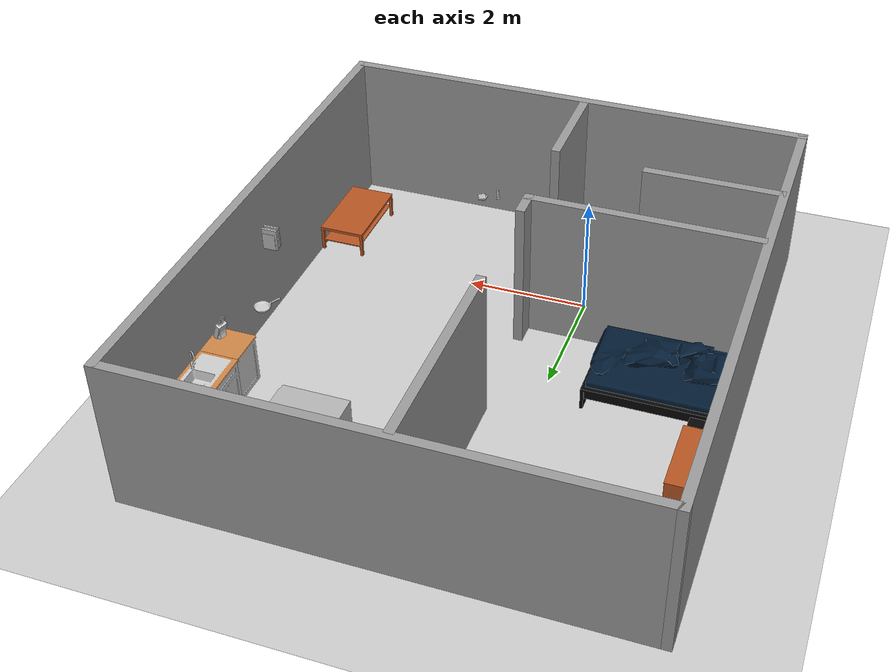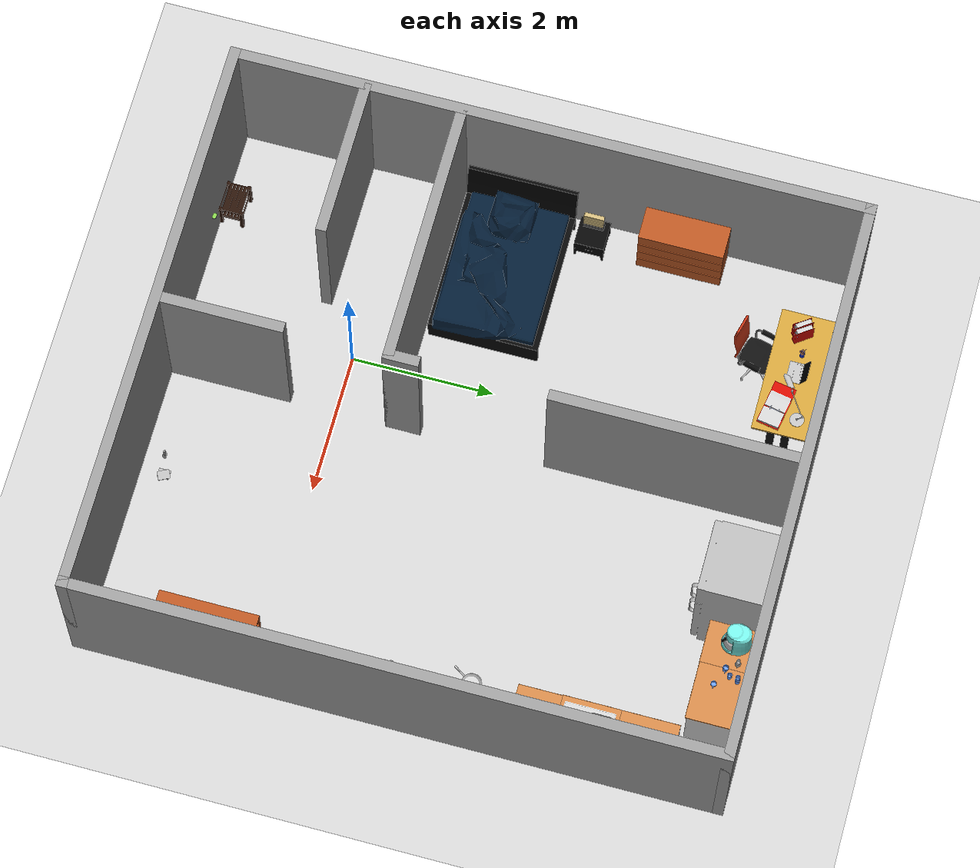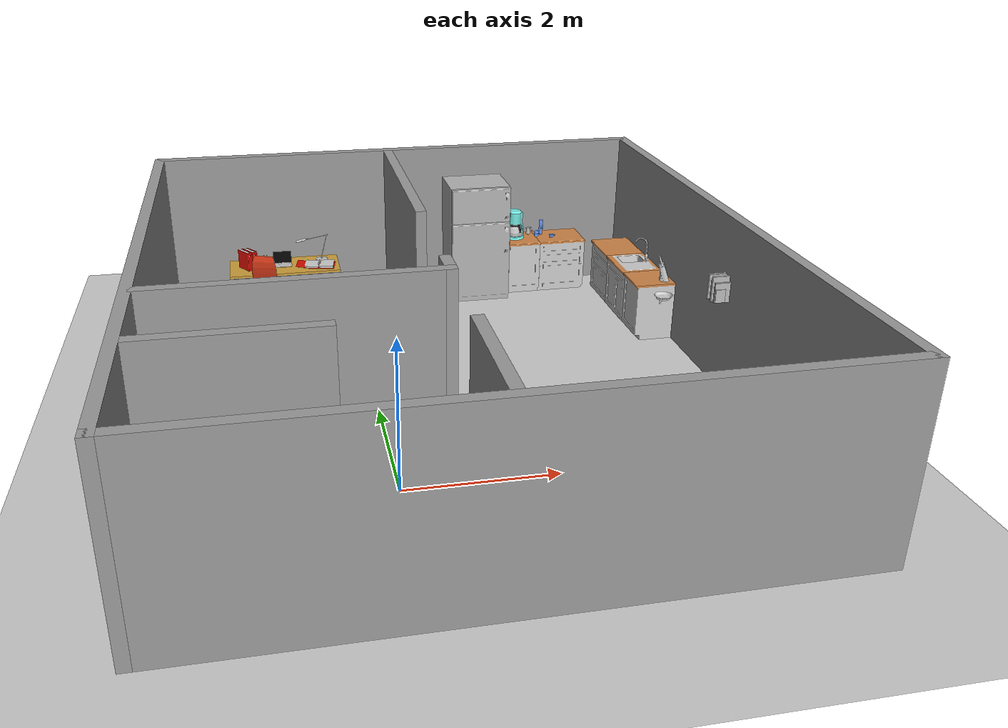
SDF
<sdf version="1.4">
 <world name="default">
  <light name="sun" type="directional">
   <pose>0 0 10 0 -0 0</pose>
   <diffuse>0.8 0.8 0.8 1</diffuse>
   <specular>0.2 0.2 0.2 1</specular>
   <attenuation>
    <range>1000</range>
    <constant>0.9</constant>
    <linear>0.01</linear>
    <quadratic>0.001</quadratic>
   </attenuation>
   <direction>-0.5 0.1 -0.9</direction>
  </light>
  <model name="ground_plane">
   <static>1</static>
   <link name="link">
    <collision name="collision">
     <geometry><plane><normal>0 0 1</normal><size>100 100</size></plane></geometry>
     <surface><friction><ode><mu>100</mu><mu2>50</mu2></ode></friction></surface>
    </collision>
    <visual name="visual">
     <cast_shadows>0</cast_shadows>
     <geometry><plane><normal>0 0 1</normal><size>100 100</size></plane></geometry>
     <material>
      <script><uri>file://media/materials/scripts/gazebo.material</uri><name>Gazebo/Grey</name></script>
     </material>
    </visual>
   </link>
  </model>
  <physics type="ode">
   <max_step_size>0.001</max_step_size>
   <real_time_factor>1</real_time_factor>
   <real_time_update_rate>1000</real_time_update_rate>
   <gravity>0 0 -9.8</gravity>
  </physics>
  <scene><ambient>0.4 0.4 0.4 1</ambient><background>0.7 0.7 0.7 1</background><shadows>1</shadows></scene>
  <audio><device>default</device></audio>
  <spherical_coordinates>
   <surface_model>EARTH_WGS84</surface_model>
   <latitude_deg>0</latitude_deg>
   <longitude_deg>0</longitude_deg>
   <elevation>0</elevation>
   <heading_deg>0</heading_deg>
  </spherical_coordinates>
  <model name="one_bedroom">
   <pose>0.994653 2.00685 0 0 -0 1.5708</pose>
   <link name="Wall_12">
    <collision name="Wall_12_Collision">
     <geometry><box><size>8 0.15 2.5</size></box></geometry>
     <pose>0 0 1.25 0 -0 0</pose>
    </collision>
    <visual name="Wall_12_Visual">
     <pose>0 0 1.25 0 -0 0</pose>
     <geometry><box><size>8 0.15 2.5</size></box></geometry>
     <material>
      <script><uri>file://media/materials/scripts/gazebo.material</uri><name>Gazebo/Grey</name></script>
      <ambient>1 1 1 1</ambient>
     </material>
    </visual>
    <pose>-4.425 -0 0 0 -0 -1.5708</pose>
   </link>
   <link name="Wall_13">
    <collision name="Wall_13_Collision">
     <geometry><box><size>9 0.15 2.5</size></box></geometry>
     <pose>0 0 1.25 0 -0 0</pose>
    </collision>
    <visual name="Wall_13_Visual">
     <pose>0 0 1.25 0 -0 0</pose>
     <geometry><box><size>9 0.15 2.5</size></box></geometry>
     <material>
      <script><uri>file://media/materials/scripts/gazebo.material</uri><name>Gazebo/Grey</name></script>
      <ambient>1 1 1 1</ambient>
     </material>
    </visual>
    <pose>-0 -3.925 0 0 -0 0</pose>
   </link>
   <link name="Wall_14">
    <collision name="Wall_14_Collision">
     <geometry><box><size>8 0.15 2.5</size></box></geometry>
     <pose>0 0 1.25 0 -0 0</pose>
    </collision>
    <visual name="Wall_14_Visual">
     <pose>0 0 1.25 0 -0 0</pose>
     <geometry><box><size>8 0.15 2.5</size></box></geometry>
     <material>
      <script><uri>file://media/materials/scripts/gazebo.material</uri><name>Gazebo/Grey</name></script>
      <ambient>1 1 1 1</ambient>
     </material>
    </visual>
    <pose>4.425 -0 0 0 -0 1.5708</pose>
   </link>
   <link name="Wall_15">
    <collision name="Wall_15_Collision">
     <geometry><box><size>9 0.15 2.5</size></box></geometry>
     <pose>0 0 1.25 0 -0 0</pose>
    </collision>
    <visual name="Wall_15_Visual">
     <pose>0 0 1.25 0 -0 0</pose>
     <geometry><box><size>9 0.15 2.5</size></box></geometry>
     <material>
      <script><uri>file://media/materials/scripts/gazebo.material</uri><name>Gazebo/Grey</name></script>
      <ambient>1 1 1 1</ambient>
     </material>
    </visual>
    <pose>-0 3.925 0 0 -0 3.14159</pose>
   </link>
   <link name="Wall_20">
    <collision name="Wall_20_Collision">
     <geometry><box><size>1.7 0.15 2.5</size></box></geometry>
     <pose>0 0 1.25 0 -0 0</pose>
    </collision>
    <visual name="Wall_20_Visual">
     <pose>0 0 1.25 0 -0 0</pose>
     <geometry><box><size>1.7 0.15 2.5</size></box></geometry>
     <material>
      <script><uri>file://media/materials/scripts/gazebo.material</uri><name>Gazebo/Grey</name></script>
      <ambient>1 1 1 1</ambient>
     </material>
    </visual>
    <pose>-3.5 0.225 0 0 -0 3.14159</pose>
   </link>
   <link name="Wall_23">
    <collision name="Wall_23_Collision">
     <geometry><box><size>3.75 0.15 2.5</size></box></geometry>
     <pose>0 0 1.25 0 -0 0</pose>
    </collision>
    <visual name="Wall_23_Visual">
     <pose>0 0 1.25 0 -0 0</pose>
     <geometry><box><size>3.75 0.15 2.5</size></box></geometry>
     <material>
      <script><uri>file://media/materials/scripts/gazebo.material</uri><name>Gazebo/Grey</name></script>
      <ambient>1 1 1 1</ambient>
     </material>
    </visual>
    <pose>-1.225 2.025 0 0 -0 1.5708</pose>
   </link>
   <link name="Wall_25">
    <collision name="Wall_25_Collision">
     <geometry><box><size>0.5 0.15 2.5</size></box></geometry>
     <pose>0 0 1.25 0 -0 0</pose>
    </collision>
    <visual name="Wall_25_Visual">
     <pose>0 0 1.25 0 -0 0</pose>
     <geometry><box><size>0.5 0.15 2.5</size></box></geometry>
     <material>
      <script><uri>file://media/materials/scripts/gazebo.material</uri><name>Gazebo/Grey</name></script>
      <ambient>1 1 1 1</ambient>
     </material>
    </visual>
    <pose>-1.05 0.225 0 0 -0 0</pose>
   </link>
   <link name="Wall_30">
    <collision name="Wall_30_Collision">
     <geometry><box><size>3.45 0.15 2.5</size></box></geometry>
     <pose>0 0 1.25 0 -0 0</pose>
    </collision>
    <visual name="Wall_30_Visual">
     <pose>0 0 1.25 0 -0 0</pose>
     <geometry><box><size>3.45 0.15 2.5</size></box></geometry>
     <material>
      <script><uri>file://media/materials/scripts/gazebo.material</uri><name>Gazebo/Grey</name></script>
      <ambient>1 1 1 1</ambient>
     </material>
    </visual>
    <pose>2.675 0.225 0 0 -0 0</pose>
   </link>
   <link name="Wall_34">
    <collision name="Wall_34_Collision">
     <geometry><box><size>2.25 0.15 2.5</size></box></geometry>
     <pose>0.2 0 1.25 0 -0 0</pose>
    </collision>
    <visual name="Wall_34_Visual">
     <pose>0.2 0 1.25 0 -0 0</pose>
     <geometry><box><size>2.25 0.15 2.5</size></box></geometry>
     <material>
      <script><uri>file://media/materials/scripts/gazebo.material</uri><name>Gazebo/Grey</name></script>
      <ambient>1 1 1 1</ambient>
     </material>
    </visual>
    <pose>-2.575 2.625 0 0 -0 1.5708</pose>
   </link>
   <static>1</static>
  </model>
  <model name="bed">
   <static>1</static>
   <link name="link">
    <visual name="mesh"><geometry><mesh><uri>model://meshes/bed_messy.dae</uri></mesh></geometry></visual>
    <collision name="frame">
     <pose>0 0 0.14 0 -0 0</pose>
     <geometry><box><size>1.56 2.185 0.38</size></box></geometry>
    </collision>
   </link>
   <pose>-1.68082 1.69035 0 0 -0 1.5708</pose>
  </model>
  <model name="desk">
   <static>1</static>
   <link name="link">
    <visual name="mesh"><geometry><mesh><uri>model://meshes/desk.dae</uri></mesh></geometry></visual>
    <collision name="top_collider">
     <pose>0 0 0.71 0 -0 0</pose>
     <geometry><box><size>1.8 0.75 0.04</size></box></geometry>
    </collision>
    <collision name="left_leg">
     <pose>0.85 0 0.345 0 -0 0</pose>
     <geometry><box><size>0.06 0.69 0.69</size></box></geometry>
    </collision>
    <collision name="right_leg">
     <pose>-0.85 0 0.345 0 -0 0</pose>
     <geometry><box><size>0.06 0.69 0.69</size></box></geometry>
    </collision>
   </link>
   <pose>-1.06976 5.95101 0 0 -0 0</pose>
  </model>
  <model name="office_chair">
   <static>1</static>
   <link name="link">
    <visual name="mesh"><geometry><mesh><uri>model://meshes/office_chair.dae</uri></mesh></geometry></visual>
    <collision name="seat">
     <pose>0 0 0.225 0 -0 0</pose>
     <geometry><box><size>0.46 0.5 0.45</size></box></geometry>
    </collision>
    <collision name="back_rest">
     <pose>0 -0.255 0.84 0 -0 0</pose>
     <geometry><box><size>0.4 0.04 0.84</size></box></geometry>
    </collision>
   </link>
   <pose>-1.3345 5.40941 0 0 0 -0.253782</pose>
  </model>
  <model name="laptop">
   <static>1</static>
   <link name="link">
    <visual name="mesh"><geometry><mesh><uri>model://meshes/laptop.dae</uri></mesh></geometry></visual>
    <collision name="collider">
     <geometry><mesh><uri>model://meshes/laptop_collision.stl</uri></mesh></geometry>
    </collision>
   </link>
   <pose>-1.09837 5.96236 0.730962 0 -0 0</pose>
  </model>
  <model name="desk_lamp">
   <static>1</static>
   <link name="link">
    <visual name="mesh"><geometry><mesh><uri>model://meshes/desk_lamp.dae</uri></mesh></geometry></visual>
   </link>
   <pose>-0.434237 6.15029 0.725892 0 0 -0.977312</pose>
  </model>
  <model name="folder_open">
   <static>1</static>
   <link name="link">
    <visual name="mesh"><geometry><mesh><uri>model://meshes/folder_open.dae</uri></mesh></geometry></visual>
    <collision name="box">
     <pose>0 0 0.025 0 -0 0</pose>
     <geometry><box><size>0.63 0.32 0.05</size></box></geometry>
    </collision>
   </link>
   <pose>-0.555025 5.83603 0.731065 0 0 -0.177012</pose>
  </model>
  <model name="folder">
   <static>1</static>
   <link name="link">
    <visual name="mesh"><geometry><mesh><uri>model://meshes/folder.dae</uri></mesh></geometry></visual>
    <collision name="box">
     <pose>0 0 0.04 0 -0 0</pose>
     <geometry><box><size>0.28 0.32 0.08</size></box></geometry>
    </collision>
   </link>
   <pose>-1.65065 5.92096 0.882314 1.5708 0 2.18905</pose>
  </model>
  <model name="folder_clone">
   <static>1</static>
   <link name="link">
    <visual name="mesh"><geometry><mesh><uri>model://meshes/folder.dae</uri></mesh></geometry></visual>
    <collision name="box">
     <pose>0 0 0.04 0 -0 0</pose>
     <geometry><box><size>0.28 0.32 0.08</size></box></geometry>
    </collision>
   </link>
   <pose>-1.73233 5.89193 0.882314 1.5708 0 2.18905</pose>
  </model>
  <model name="night_stand">
   <static>1</static>
   <link name="link">
    <visual name="mesh"><geometry><mesh><uri>model://meshes/night_stand.dae</uri></mesh></geometry></visual>
    <collision name="box">
     <pose>0 0 0.14 0 -0 0</pose>
     <geometry><box><size>0.42 0.42 0.38</size></box></geometry>
    </collision>
   </link>
   <pose>-2.53959 2.75425 0 0 -0 1.5708</pose>
  </model>
  <model name="fridge">
   <static>1</static>
   <link name="link">
    <visual name="mesh"><geometry><mesh><uri>model://meshes/fridge.dae</uri></mesh></geometry></visual>
    <collision name="collider">
     <pose>0 -0.05 1 0 -0 0</pose>
     <geometry><box><size>1 0.977 2</size></box></geometry>
    </collision>
   </link>
   <pose>2.19767 5.9753 0 0 -0 0</pose>
  </model>
  <model name="floor_unit_narrow1">
   <static>1</static>
   <link name="link">
    <visual name="mesh">
     <geometry><mesh><uri>model://meshes/floor_unit_narrow1.dae</uri></mesh></geometry>
    </visual>
    <collision name="collider">
     <pose>0 0 0.44 0 -0 0</pose>
     <geometry><box><size>0.6 0.6 0.88</size></box></geometry>
    </collision>
   </link>
   <pose>2.99677 6.05346 0 0 -0 0</pose>
  </model>
  <model name="floor_unit_sink">
   <static>1</static>
   <link name="link">
    <visual name="mesh"><geometry><mesh><uri>model://meshes/floor_unit_sink.dae</uri></mesh></geometry></visual>
    <collision name="collider">
     <pose>0 0 0.44 0 -0 0</pose>
     <geometry><box><size>0.8 0.6 0.88</size></box></geometry>
    </collision>
   </link>
   <pose>4.54962 4.49747 0 0 0 -1.5708</pose>
  </model>
  <model name="dresser">
   <static>1</static>
   <link name="link">
    <visual name="mesh"><geometry><mesh><uri>model://meshes/dresser.dae</uri></mesh></geometry></visual>
    <collision name="collider">
     <pose>0 0 0.5 0 -0 0</pose>
     <geometry><box><size>1.2 0.47 1</size></box></geometry>
    </collision>
   </link>
   <pose>-2.61719 4.02642 0 0 -0 1.5708</pose>
  </model>
  <model name="bathroom_shelf1">
   <static>1</static>
   <link name="link">
    <visual name="mesh"><geometry><mesh><uri>model://meshes/bathroom_shelf1.dae</uri></mesh></geometry></visual>
    <collision name="collider">
     <pose>0 0 0.215 0 -0 0</pose>
     <geometry><box><size>0.45 0.35 0.43</size></box></geometry>
    </collision>
   </link>
   <pose>-1.72645 -2.1724 0 0 -0 0</pose>
  </model>
  <model name="barsoap">
   <static>1</static>
   <link name="link">
    <visual name="mesh"><geometry><mesh><uri>model://meshes/barsoap.dae</uri></mesh></geometry></visual>
    <collision name="collider"><geometry><box><size>0.081 0.054 0.012</size></box></geometry></collision>
   </link>
   <pose>-1.22733 -2.29391 0.826816 0 0 -0.112423</pose>
  </model>
  <model name="floor_unit_narrow1_0">
   <static>1</static>
   <link name="link">
    <visual name="mesh">
     <geometry><mesh><uri>model://meshes/floor_unit_narrow1.dae</uri></mesh></geometry>
    </visual>
    <collision name="collider">
     <pose>0 0 0.44 0 -0 0</pose>
     <geometry><box><size>0.6 0.6 0.88</size></box></geometry>
    </collision>
   </link>
   <pose>4.55819 3.79696 0 0 0 -1.5708</pose>
  </model>
  <model name="floor_unit_wide">
   <static>1</static>
   <link name="link">
    <visual name="mesh"><geometry><mesh><uri>model://meshes/floor_unit_wide.dae</uri></mesh></geometry></visual>
    <collision name="collider">
     <pose>0 0 0.44 0 -0 0</pose>
     <geometry><box><size>0.8 0.6 0.88</size></box></geometry>
    </collision>
   </link>
   <pose>4.55144 5.29738 0 0 0 -1.5708</pose>
  </model>
  <model name="floor_unit_wide_0">
   <static>1</static>
   <link name="link">
    <visual name="mesh"><geometry><mesh><uri>model://meshes/floor_unit_wide.dae</uri></mesh></geometry></visual>
    <collision name="collider">
     <pose>0 0 0.44 0 -0 0</pose>
     <geometry><box><size>0.8 0.6 0.88</size></box></geometry>
    </collision>
   </link>
   <pose>3.69685 6.05771 0 0 -0 0</pose>
  </model>
  <model name="coffee_machine">
   <static>1</static>
   <link name="link">
    <visual name="mesh"><geometry><mesh><uri>model://meshes/coffee_machine.dae</uri></mesh></geometry></visual>
    <collision name="base_collider">
     <pose>0 0 0.02 0 -0 0</pose>
     <geometry><box><size>0.34 0.4 0.04</size></box></geometry>
    </collision>
    <collision name="top_collider">
     <pose>0 0 0.36 0 -0 0</pose>
     <geometry><cylinder><radius>0.11</radius><length>0.2</length></cylinder></geometry>
    </collision>
   </link>
   <pose>2.9297 6.08817 0.918779 0 -0 0</pose>
  </model>
  <model name="coffee_pot">
   <static>1</static>
   <link name="link">
    <visual name="mesh"><geometry><mesh><uri>model://meshes/coffee_pot.dae</uri></mesh></geometry></visual>
    <collision name="collider">
     <pose>0 0 0.08 0 -0 0</pose>
     <geometry><cylinder><radius>0.135</radius><length>0.16</length></cylinder></geometry>
    </collision>
   </link>
   <pose>2.9355 6.09004 0.960007 0 -0 0.387948</pose>
  </model>
  <model name="glass">
   <static>1</static>
   <link name="link">
    <visual name="mesh"><geometry><mesh><uri>model://meshes/glass.dae</uri></mesh></geometry></visual>
    <collision name="collider">
     <pose>0 0 0.06 0 -0 0</pose>
     <geometry><cylinder><radius>0.033</radius><length>0.12</length></cylinder></geometry>
    </collision>
   </link>
   <pose>3.41165 6.15206 0.918146 0 -0 0</pose>
  </model>
  <model name="glass_clone">
   <static>1</static>
   <link name="link">
    <visual name="mesh"><geometry><mesh><uri>model://meshes/glass.dae</uri></mesh></geometry></visual>
    <collision name="collider">
     <pose>0 0 0.06 0 -0 0</pose>
     <geometry><cylinder><radius>0.033</radius><length>0.12</length></cylinder></geometry>
    </collision>
   </link>
   <pose>3.45215 6.26601 1.02112 0 -0 0</pose>
  </model>
  <model name="glass_clone_0">
   <static>1</static>
   <link name="link">
    <visual name="mesh"><geometry><mesh><uri>model://meshes/glass.dae</uri></mesh></geometry></visual>
    <collision name="collider">
     <pose>0 0 0.06 0 -0 0</pose>
     <geometry><cylinder><radius>0.033</radius><length>0.12</length></cylinder></geometry>
    </collision>
   </link>
   <pose>3.45117 6.26738 0.918146 0 -0 0</pose>
  </model>
  <model name="milk_pot">
   <static>1</static>
   <link name="link">
    <visual name="mesh"><geometry><mesh><uri>model://meshes/milk_pot.dae</uri></mesh></geometry></visual>
    <collision name="collider">
     <pose>0 0 0.06 0 -0 0</pose>
     <geometry><cylinder><radius>0.04</radius><length>0.12</length></cylinder></geometry>
    </collision>
   </link>
   <pose>3.20975 6.21746 0.919065 0 -0 3.13042</pose>
  </model>
  <model name="livingroom_table">
   <static>1</static>
   <link name="link">
    <visual name="mesh"><geometry><mesh><uri>model://meshes/livingroom_table.dae</uri></mesh></geometry></visual>
    <collision name="collider">
     <pose>0 0 0.225 0 -0 0</pose>
     <geometry><box><size>1.4 0.78 0.45</size></box></geometry>
    </collision>
   </link>
   <pose>4.45218 -0.825608 0 0 -0 1.5708</pose>
  </model>
  <model name="phone_base">
   <static>1</static>
   <link name="link">
    <visual name="mesh"><geometry><mesh><uri>model://meshes/phone_base.dae</uri></mesh></geometry></visual>
    <collision name="collider">
     <pose>0 0 0.0185 0 -0 0</pose>
     <geometry><box><size>0.084 0.061 0.037</size></box></geometry>
    </collision>
   </link>
   <pose>2.20297 -2.00618 0.450192 0 0 -3.10578</pose>
  </model>
  <model name="phone1">
   <static>1</static>
   <link name="link">
    <visual name="mesh"><geometry><mesh><uri>model://meshes/phone1.dae</uri></mesh></geometry></visual>
    <collision name="collider"><geometry><box><size>0.049 0.033 0.168</size></box></geometry></collision>
   </link>
   <pose>2.20566 -2.00089 0.557711 0 0 -3.09985</pose>
  </model>
  <model name="book1">
   <static>1</static>
   <link name="link">
    <visual name="mesh"><geometry><mesh><uri>model://meshes/book1.dae</uri></mesh></geometry></visual>
    <collision name="collider"><geometry><box><size>0.22 0.288 0.01</size></box></geometry></collision>
   </link>
   <pose>4.73321 1.89529 1.48592 -1.5708 0 0</pose>
  </model>
  <model name="book2">
   <static>1</static>
   <link name="link">
    <visual name="mesh"><geometry><mesh><uri>model://meshes/book2.dae</uri></mesh></geometry></visual>
    <collision name="collider"><geometry><box><size>0.257 0.36 0.04</size></box></geometry></collision>
   </link>
   <pose>4.71652 1.87261 1.52852 1.5708 -0 0</pose>
  </model>
  <model name="book3">
   <static>1</static>
   <link name="link">
    <visual name="mesh"><geometry><mesh><uri>model://meshes/book3.dae</uri></mesh></geometry></visual>
    <collision name="collider"><geometry><box><size>0.22 0.288 0.02</size></box></geometry></collision>
   </link>
   <pose>4.72683 1.84277 1.48124 1.5708 -0 0</pose>
  </model>
  <model name="book4">
   <static>1</static>
   <link name="link">
    <visual name="mesh"><geometry><mesh><uri>model://meshes/book4.dae</uri></mesh></geometry></visual>
    <collision name="collider"><geometry><box><size>0.14 0.192 0.015</size></box></geometry></collision>
   </link>
   <pose>4.70444 1.81743 1.44146 1.5708 -0 0</pose>
  </model>
  <model name="book3_clone">
   <static>1</static>
   <link name="link">
    <visual name="mesh"><geometry><mesh><uri>model://meshes/book3.dae</uri></mesh></geometry></visual>
    <collision name="collider"><geometry><box><size>0.22 0.288 0.02</size></box></geometry></collision>
   </link>
   <pose>4.73921 1.75727 1.48124 1.5708 -0 0</pose>
  </model>
  <model name="book3_clone_0">
   <static>1</static>
   <link name="link">
    <visual name="mesh"><geometry><mesh><uri>model://meshes/book3.dae</uri></mesh></geometry></visual>
    <collision name="collider"><geometry><box><size>0.22 0.288 0.02</size></box></geometry></collision>
   </link>
   <pose>4.73546 1.73203 1.48124 1.5708 -0 0</pose>
  </model>
  <model name="book4_clone">
   <static>1</static>
   <link name="link">
    <visual name="mesh"><geometry><mesh><uri>model://meshes/book4.dae</uri></mesh></geometry></visual>
    <collision name="collider"><geometry><box><size>0.14 0.192 0.015</size></box></geometry></collision>
   </link>
   <pose>4.70242 1.71156 1.44146 1.5708 -0 0</pose>
  </model>
  <model name="book2_clone">
   <static>1</static>
   <link name="link">
    <visual name="mesh"><geometry><mesh><uri>model://meshes/book2.dae</uri></mesh></geometry></visual>
    <collision name="collider"><geometry><box><size>0.257 0.36 0.04</size></box></geometry></collision>
   </link>
   <pose>4.72788 1.78604 1.52503 1.5708 -0 0</pose>
  </model>
  <model name="pencil_jar">
   <static>1</static>
   <link name="link">
    <visual name="mesh"><geometry><mesh><uri>model://meshes/pencil_jar.dae</uri></mesh></geometry></visual>
    <collision name="collider">
     <pose>0 0 0.1 0 -0 0</pose>
     <geometry><cylinder><radius>0.035</radius><length>0.2</length></cylinder></geometry>
    </collision>
   </link>
   <pose>-1.36135 5.9995 0.728069 0 -0 0</pose>
  </model>
  <model name="knives">
   <static>1</static>
   <link name="link">
    <visual name="mesh"><geometry><mesh><uri>model://meshes/knives.dae</uri></mesh></geometry></visual>
    <collision name="collider">
     <geometry><mesh><uri>model://meshes/knives_collision.stl</uri></mesh></geometry>
    </collision>
   </link>
   <pose>4.71227 3.67614 0.881042 0 0 -1.86308</pose>
  </model>
  <model name="frying_pan">
   <static>1</static>
   <link name="link">
    <visual name="mesh"><geometry><mesh><uri>model://meshes/frying_pan.dae</uri></mesh></geometry></visual>
    <collision name="collider">
     <pose>0 0 0.032 0 -0 0</pose>
     <geometry><cylinder><radius>0.135</radius><length>0.064</length></cylinder></geometry>
    </collision>
   </link>
   <pose>4.39972 2.90003 0.95302 0 0 -2.12584</pose>
  </model>
  <model name="cup">
   <static>1</static>
   <link name="link">
    <visual name="mesh"><geometry><mesh><uri>model://meshes/cup.dae</uri></mesh></geometry></visual>
    <collision name="collider">
     <pose>0 0 0.025 0 -0 0</pose>
     <geometry><cylinder><radius>0.04</radius><length>0.05</length></cylinder></geometry>
    </collision>
   </link>
   <pose>3.56031 5.97388 0.922223 0 -0 0</pose>
  </model>
  <model name="cup_clone">
   <static>1</static>
   <link name="link">
    <visual name="mesh"><geometry><mesh><uri>model://meshes/cup.dae</uri></mesh></geometry></visual>
    <collision name="collider">
     <pose>0 0 0.025 0 -0 0</pose>
     <geometry><cylinder><radius>0.04</radius><length>0.05</length></cylinder></geometry>
    </collision>
   </link>
   <pose>3.31909 6.07227 0.922223 0 -0 0</pose>
  </model>
  <model name="cup_clone_clone">
   <static>1</static>
   <link name="link">
    <visual name="mesh"><geometry><mesh><uri>model://meshes/cup.dae</uri></mesh></geometry></visual>
    <collision name="collider">
     <pose>0 0 0.025 0 -0 0</pose>
     <geometry><cylinder><radius>0.04</radius><length>0.05</length></cylinder></geometry>
    </collision>
   </link>
   <pose>3.32604 6.07413 0.96566 0 -0.257538 -0.322076</pose>
  </model>
  <model name="bluray">
   <static>1</static>
   <link name="link">
    <visual name="mesh"><geometry><mesh><uri>model://meshes/bluray.dae</uri></mesh></geometry></visual>
    <collision name="collider"><geometry><box><size>0.132 0.168 0.014</size></box></geometry></collision>
   </link>
   <pose>2.48345 -1.93831 0.471747 0 -0 0.456145</pose>
  </model>
  <model name="bluray_clone">
   <static>1</static>
   <link name="link">
    <visual name="mesh"><geometry><mesh><uri>model://meshes/bluray.dae</uri></mesh></geometry></visual>
    <collision name="collider"><geometry><box><size>0.132 0.168 0.014</size></box></geometry></collision>
   </link>
   <pose>2.46283 -1.93996 0.456237 0 -0 0</pose>
  </model>
  <model name="night_light">
   <static>1</static>
   <link name="link">
    <visual name="mesh"><geometry><mesh><uri>model://meshes/night_light.dae</uri></mesh></geometry></visual>
    <collision name="box">
     <pose>0 0 0.16 0 -0 0</pose>
     <geometry><box><size>0.3 0.06 0.32</size></box></geometry>
    </collision>
   </link>
   <pose>-2.64806 2.74254 0.378883 0 0 -1.5708</pose>
  </model>
 </world>
</sdf>
